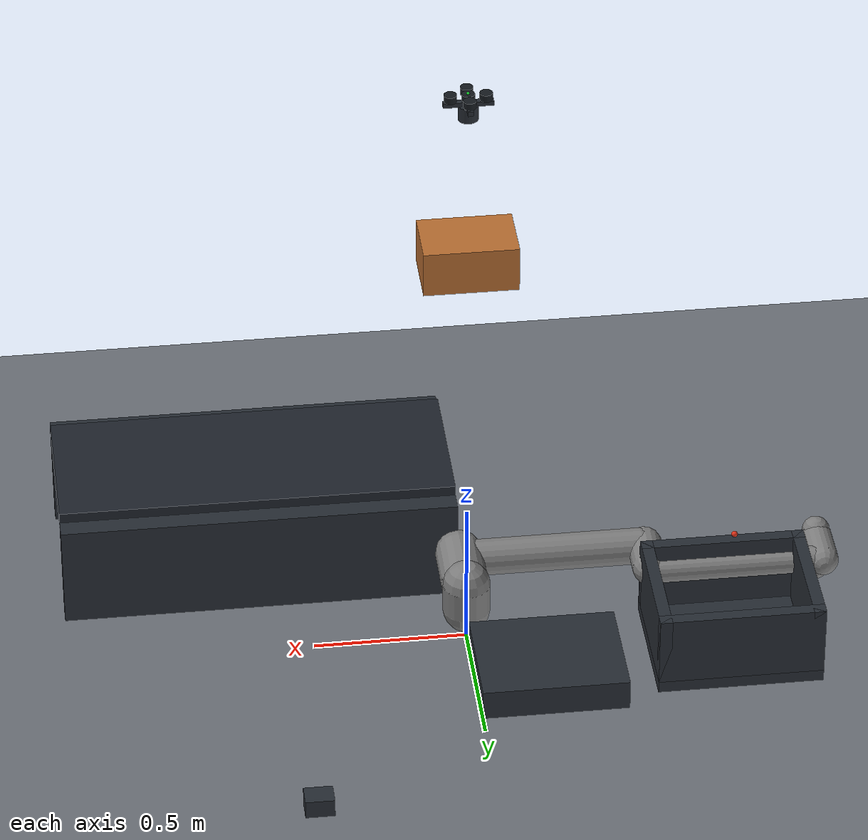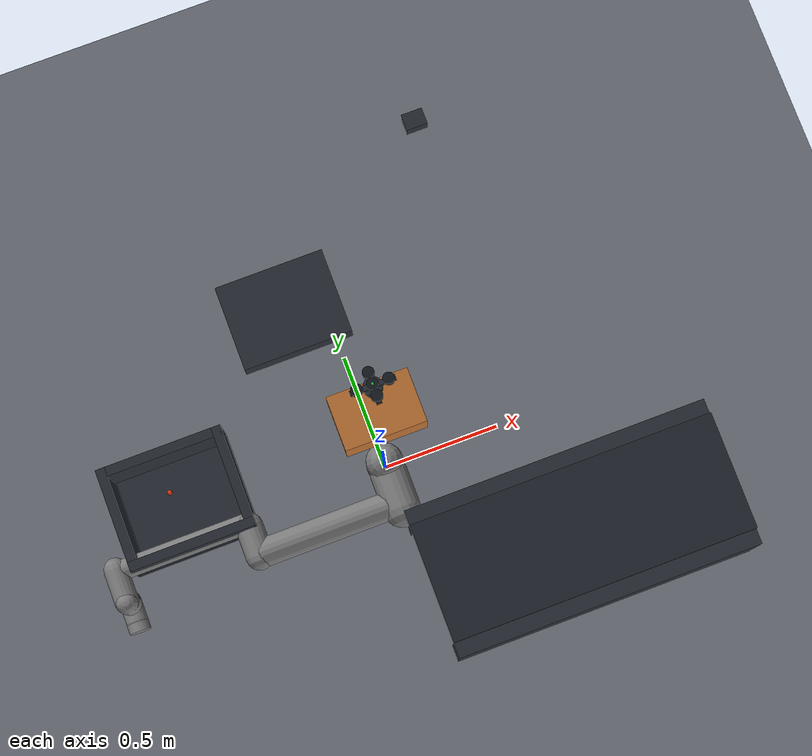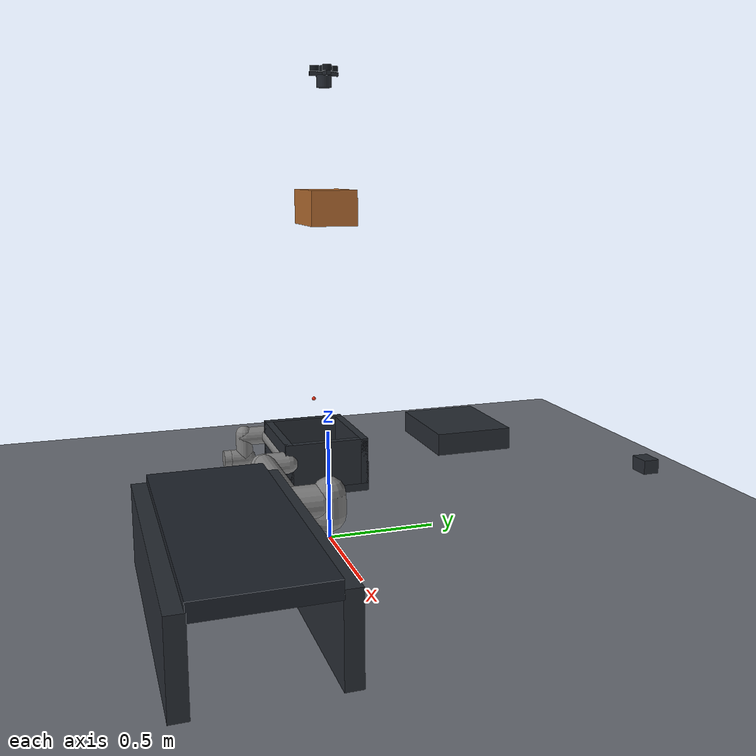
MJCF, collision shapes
<mujoco model="object profiling suspended box">
  <include file="ur10e.xml"/>

  <option timestep="0.002" integrator="implicitfast" gravity="0 0 -9.81"/>

  <visual>
    <headlight diffuse="0.65 0.65 0.65" ambient="0.25 0.25 0.25" specular="0.1 0.1 0.1"/>
    <global azimuth="125" elevation="-22"/>
    <map znear="0.01" zfar="5"/>
  </visual>

  <asset>
    <texture type="skybox" builtin="gradient" rgb1="0.75 0.82 0.9" rgb2="0.12 0.16 0.22" width="512" height="3072"/>
    <texture type="2d" name="floor_tex" builtin="checker" mark="edge" rgb1="0.5 0.52 0.55" rgb2="0.34 0.36 0.39" markrgb="0.8 0.8 0.8" width="300" height="300"/>
    <material name="floor_mat" texture="floor_tex" texuniform="true" texrepeat="4 4" reflectance="0.05"/>
    <material name="belt_mat" rgba="0.12 0.14 0.17 1"/>
    <material name="frame_mat" rgba="0.15 0.17 0.2 1"/>
    <material name="cup_mat" rgba="0.08 0.1 0.12 1"/>
    <material name="box_mat" rgba="0.72 0.43 0.19 1"/>
  </asset>

  <worldbody>
    <light name="key_light" pos="0.2 0.3 2.5" dir="0 0 -1" directional="true" diffuse="0.8 0.8 0.8"/>
    <light name="fill_light" pos="1.5 1.5 1.4" dir="-1 -1 -0.4" directional="true" diffuse="0.45 0.45 0.45"/>
    <geom name="floor" type="plane" size="0 0 0.05" material="floor_mat"/>

    <body name="conveyor" pos="0.65 -0.55 0.35">
      <geom name="belt" type="box" size="0.65 0.25 0.035" material="belt_mat" contype="1" conaffinity="1"/>
      <geom type="box" pos="0 -0.28 -0.18" size="0.65 0.035 0.18" material="frame_mat"/>
      <geom type="box" pos="0 0.28 -0.18" size="0.65 0.035 0.18" material="frame_mat"/>
    </body>

    <!-- Apoyo pasivo del checkpoint. Su cara superior coincide con la base de
         la caja nominal antes de activar la succion. -->
    <body name="pickup_support" pos="-0.174 0.691 0.405">
      <geom name="pickup_support_geom" type="box" size="0.23 0.18 0.05" material="frame_mat" friction="0.9 0.02 0.002"/>
    </body>

    <body name="error_bin" pos="-0.85 0.15 0.0">
      <!-- group 5: visible en el visor (se activa a proposito), oculta para
           scan_rgbd_cam, que solo renderiza los grupos 0-2 por defecto. -->
      <geom name="error_bin_floor" type="box" size="0.27 0.22 0.02" pos="0 0 0.02" material="frame_mat" group="5"/>
      <geom name="error_bin_wall_xp" type="box" size="0.02 0.22 0.12" pos="0.25 0 0.16" material="frame_mat" group="5"/>
      <geom name="error_bin_wall_xn" type="box" size="0.02 0.22 0.12" pos="-0.25 0 0.16" material="frame_mat" group="5"/>
      <geom name="error_bin_wall_yp" type="box" size="0.27 0.02 0.12" pos="0 0.20 0.16" material="frame_mat" group="5"/>
      <geom name="error_bin_wall_yn" type="box" size="0.27 0.02 0.12" pos="0 -0.20 0.16" material="frame_mat" group="5"/>
      <site name="error_zone_drop" pos="0 0 0.45" size="0.01" rgba="0.9 0.2 0.1 1"/>
    </body>

    <!-- Tres cuartos por debajo de la caja: ve el fondo y dos laterales.
         Con yaw 0 / 90 / 180 se recorren las cinco caras no agarradas. -->
    <body name="scan_target" pos="-0.174 0.735 0.650"/>
    <camera name="scan_rgbd_cam" mode="targetbody" target="scan_target" pos="0.5566 1.22835 0.38025" fovy="50" resolution="640 480"/>
    <body name="scan_camera_housing" pos="0.6042 1.2605 0.3978">
      <geom name="scan_camera_housing_geom" type="box" size="0.045 0.035 0.030" material="frame_mat" contype="0" conaffinity="0"/>
    </body>
    <camera name="infeed_rgbd_cam" mode="targetbody" target="conveyor" pos="0.65 -0.55 1.85" fovy="55" resolution="640 480"/>

    <body name="profiling_gripper" pos="0 0 2">
      <freejoint name="gripper_free"/>
      <inertial pos="0 0 0.025" mass="0.75" diaginertia="0.003 0.003 0.004"/>
      <geom name="gripper_hub" type="cylinder" size="0.032 0.025" pos="0 0 0.025" material="frame_mat" contype="0" conaffinity="0"/>
      <geom name="gripper_beam_x" type="box" size="0.078 0.009 0.008" pos="0 0 0.055" material="frame_mat" contype="0" conaffinity="0"/>
      <geom name="gripper_beam_y" type="box" size="0.009 0.063 0.008" pos="0 0 0.055" material="frame_mat" contype="0" conaffinity="0"/>
      <geom name="cup_center" type="cylinder" size="0.020 0.012" pos="0 0 0.077" material="cup_mat" contype="0" conaffinity="0"/>
      <geom name="cup_x_pos" type="cylinder" size="0.020 0.012" pos="0.055 0 0.077" material="cup_mat" contype="0" conaffinity="0"/>
      <geom name="cup_x_neg" type="cylinder" size="0.020 0.012" pos="-0.055 0 0.077" material="cup_mat" contype="0" conaffinity="0"/>
      <geom name="cup_y_pos" type="cylinder" size="0.020 0.012" pos="0 0.040 0.077" material="cup_mat" contype="0" conaffinity="0"/>
      <geom name="cup_y_neg" type="cylinder" size="0.020 0.012" pos="0 -0.040 0.077" material="cup_mat" contype="0" conaffinity="0"/>
      <site name="gripper_tcp" pos="0 0 0.089" size="0.005" rgba="0.1 0.9 0.2 1"/>
    </body>

    <body name="profiling_box" pos="0 0 1.5">
      <freejoint name="box_free"/>
      <inertial pos="0 0 0" mass="2" diaginertia="0.02 0.03 0.04"/>
      <!-- Visual: se sustituye por malla en runtime. group 2 se renderiza. -->
      <geom name="box_geom" type="box" size="0.15 0.10 0.075" material="box_mat" contype="0" conaffinity="0" group="2"/>
      <geom name="box_collision" type="box" size="0.15 0.10 0.075" rgba="1 0 0 0" friction="0.8 0.02 0.002" contype="1" conaffinity="1" group="3"/>
    </body>
  </worldbody>

  <equality>
    <weld name="wrist_to_gripper" body1="wrist_3_link" body2="profiling_gripper" active="false"
          solref="0.004 1" solimp="0.99 0.9999 0.001 0.5 2"/>
    <weld name="gripper_to_box" body1="profiling_gripper" body2="profiling_box" active="false"
          solref="0.004 1" solimp="0.99 0.9999 0.001 0.5 2"/>
  </equality>
</mujoco>

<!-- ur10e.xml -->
<mujoco model="ur10e">
  <compiler angle="radian" meshdir="assets" autolimits="true"/>

  <option integrator="implicitfast"/>

  <default>
    <default class="ur10e">
      <material specular="0.5" shininess="0.25"/>
      <joint axis="0 1 0" range="-6.28319 6.28319" armature="0.1"/>
      <position ctrlrange="-6.2831 6.2831"/>
      <general biastype="affine" ctrlrange="-6.2831 6.2831" gainprm="5000" biasprm="0 -5000 -500"/>
      <default class="size4">
        <joint damping="10"/>
        <general forcerange="-330 330"/>
      </default>
      <default class="size3">
        <joint damping="5"/>
        <general forcerange="-150 150"/>
        <default class="size3_limited">
          <joint range="-3.1415 3.1415"/>
          <general ctrlrange="-3.1415 3.1415"/>
        </default>
      </default>
      <default class="size2">
        <joint damping="2"/>
        <general forcerange="-56 56"/>
      </default>
      <default class="visual">
        <geom type="mesh" contype="0" conaffinity="0" group="2"/>
      </default>
      <default class="collision">
        <geom type="capsule" group="3"/>
        <default class="eef_collision">
          <geom type="cylinder"/>
        </default>
      </default>
      <site size="0.001" rgba="0.5 0.5 0.5 0.3" group="4"/>
    </default>
  </default>

  <asset>
    <material class="ur10e" name="black" rgba="0.033 0.033 0.033 1"/>
    <material class="ur10e" name="jointgray" rgba="0.278 0.278 0.278 1"/>
    <material class="ur10e" name="linkgray" rgba="0.82 0.82 0.82 1"/>
    <material class="ur10e" name="urblue" rgba="0.49 0.678 0.8 1"/>

    <mesh file="base_0.msh"/>
    <mesh file="base_1.msh"/>
    <mesh file="shoulder_0.msh"/>
    <mesh file="shoulder_1.msh"/>
    <mesh file="shoulder_2.msh"/>
    <mesh file="upperarm_0.msh"/>
    <mesh file="upperarm_1.msh"/>
    <mesh file="upperarm_2.msh"/>
    <mesh file="upperarm_3.msh"/>
    <mesh file="forearm_0.msh"/>
    <mesh file="forearm_1.msh"/>
    <mesh file="forearm_2.msh"/>
    <mesh file="forearm_3.msh"/>
    <mesh file="wrist1_0.msh"/>
    <mesh file="wrist1_1.msh"/>
    <mesh file="wrist1_2.msh"/>
    <mesh file="wrist2_0.msh"/>
    <mesh file="wrist2_1.msh"/>
    <mesh file="wrist2_2.msh"/>
    <mesh file="wrist3.msh"/>
  </asset>

  <worldbody>
    <light name="spotlight" mode="targetbodycom" target="wrist_2_link" pos="0 -1 2"/>
    <body name="base" quat="0 0 0 -1" childclass="ur10e">
      <inertial mass="4.0" pos="0 0 0" diaginertia="0.0061063308908 0.0061063308908 0.01125"/>
      <geom mesh="base_0" material="black" class="visual"/>
      <geom mesh="base_1" material="jointgray" class="visual"/>
      <body name="shoulder_link" pos="0 0 0.181">
        <inertial pos="0 0 0" mass="7.778" diaginertia="0.0314743 0.0314743 0.0218756"/>
        <joint name="shoulder_pan_joint" class="size4" axis="0 0 1"/>
        <geom mesh="shoulder_0" material="urblue" class="visual"/>
        <geom mesh="shoulder_1" material="black" class="visual"/>
        <geom mesh="shoulder_2" material="jointgray" class="visual"/>
        <geom class="collision" size="0.078 0.05" pos="0 0 -0.02"/>
        <body name="upper_arm_link" pos="0 0.176 0" quat="1 0 1 0">
          <inertial pos="0 0 0.3065" mass="12.93" diaginertia="0.423074 0.423074 0.0363656"/>
          <joint name="shoulder_lift_joint" class="size4"/>
          <geom mesh="upperarm_0" material="black" class="visual"/>
          <geom mesh="upperarm_1" material="jointgray" class="visual"/>
          <geom mesh="upperarm_2" material="urblue" class="visual"/>
          <geom mesh="upperarm_3" material="linkgray" class="visual"/>
          <geom class="collision" pos="0 -0.05 0" quat="1 1 0 0" size="0.078 0.08"/>
          <geom class="collision" size="0.06 0.3" pos="0 0 0.3"/>
          <body name="forearm_link" pos="0 -0.137 0.613">
            <inertial pos="0 0 0.2855" mass="3.87" diaginertia="0.11059 0.11059 0.0108844"/>
            <joint name="elbow_joint" class="size3_limited"/>
            <geom mesh="forearm_0" material="urblue" class="visual"/>
            <geom mesh="forearm_1" material="black" class="visual"/>
            <geom mesh="forearm_2" material="jointgray" class="visual"/>
            <geom mesh="forearm_3" material="linkgray" class="visual"/>
            <geom class="collision" pos="0 0.08 0" quat="1 1 0 0" size="0.058 0.065"/>
            <geom class="collision" size="0.043 0.28" pos="0 0 0.29"/>
            <body name="wrist_1_link" pos="0 0 0.571" quat="1 0 1 0">
              <inertial pos="0 0.135 0" quat="0.5 0.5 -0.5 0.5" mass="1.96"
                diaginertia="0.0055125 0.00510825 0.00510825"/>
              <joint name="wrist_1_joint" class="size2"/>
              <geom mesh="wrist1_0" material="black" class="visual"/>
              <geom mesh="wrist1_1" material="urblue" class="visual"/>
              <geom mesh="wrist1_2" material="jointgray" class="visual"/>
              <geom class="collision" pos="0 0.06 0" quat="1 1 0 0" size="0.05 0.07"/>
              <body name="wrist_2_link" pos="0 0.135 0">
                <inertial pos="0 0 0.12" quat="0.5 0.5 -0.5 0.5" mass="1.96"
                  diaginertia="0.0055125 0.00510825 0.00510825"/>
                <joint name="wrist_2_joint" axis="0 0 1" class="size2"/>
                <geom mesh="wrist2_0" material="black" class="visual"/>
                <geom mesh="wrist2_1" material="urblue" class="visual"/>
                <geom mesh="wrist2_2" material="jointgray" class="visual"/>
                <geom class="collision" size="0.046 0.065" pos="0 0 0.05"/>
                <geom class="collision" pos="0 0.028 0.12" quat="1 1 0 0" size="0.046 0.043"/>
                <body name="wrist_3_link" pos="0 0 0.12">
                  <inertial pos="0 0.092 0" quat="0 1 -1 0" mass="0.202"
                    diaginertia="0.000204525 0.000144346 0.000144346"/>
                  <joint name="wrist_3_joint" class="size2"/>
                  <geom material="linkgray" mesh="wrist3" class="visual"/>
                  <geom class="eef_collision" pos="0 0.097 0" quat="1 1 0 0" size="0.046 0.02"/>
                  <site name="attachment_site" pos="0 0.1 0" quat="-1 1 0 0"/>
                </body>
              </body>
            </body>
          </body>
        </body>
      </body>
    </body>
  </worldbody>

  <actuator>
    <general class="size4" name="shoulder_pan" joint="shoulder_pan_joint"/>
    <general class="size4" name="shoulder_lift" joint="shoulder_lift_joint"/>
    <general class="size3_limited" name="elbow" joint="elbow_joint"/>
    <general class="size2" name="wrist_1" joint="wrist_1_joint"/>
    <general class="size2" name="wrist_2" joint="wrist_2_joint"/>
    <general class="size2" name="wrist_3" joint="wrist_3_joint"/>
  </actuator>

  <keyframe>
    <key name="home" qpos="-1.5708 -1.5708 1.5708 -1.5708 -1.5708 0" ctrl="-1.5708 -1.5708 1.5708 -1.5708 -1.5708 0"/>
  </keyframe>
</mujoco>
